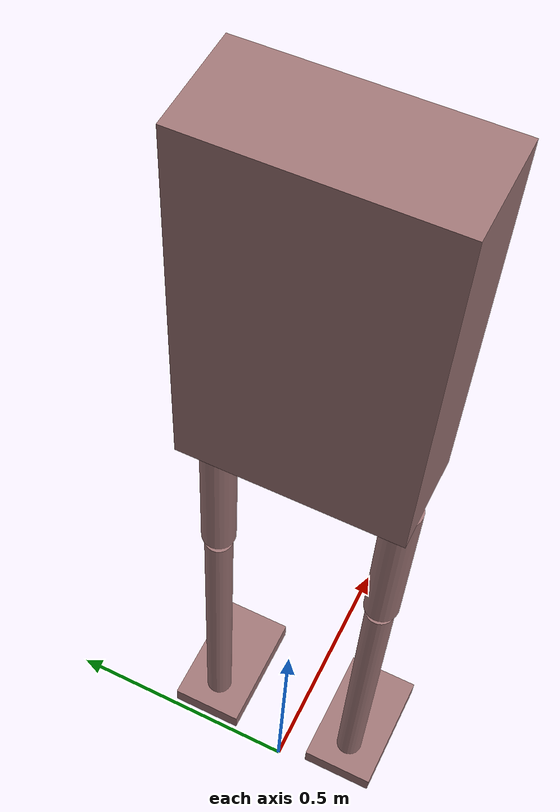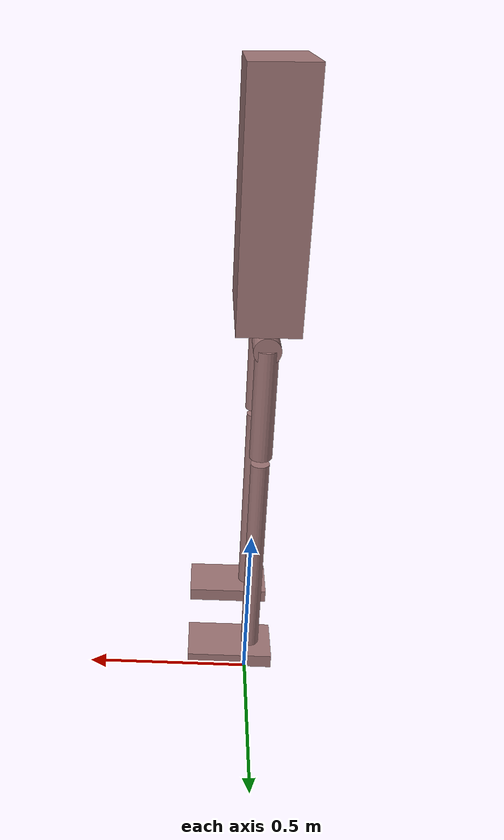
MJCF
<mujoco model="mauve_biped">
    <compiler angle="degree" coordinate="local" inertiafromgeom="true"/>

    <default>
    <geom rgba="0.62 0.46 0.46 1" density="1000" friction="1.0 0.005 0.0001"/>
    <joint damping="1.5" armature="0.01" limited="true"/>
    <motor ctrlrange="-1.0 1.0"/>
    </default>

    <worldbody>
    <body name="torso" pos="0 0 1.5">
        <camera name="tracking_cam" mode="trackcom" pos="-6 -6 6" xyaxes="1 -1 0 0 1 1"/>
        <freejoint name="root"/>

        <geom name="torso_box" type="box" size="0.08 0.18 0.3" density="300"/>
        <geom name="pelvis_sphere" type="sphere" size="0.04" pos="0 0 -0.34" density="300"/>

        <body name="left_leg" pos="0 0.12 -0.34">
        <joint name="left_hip_roll" type="hinge" axis="1 0 0" range="-25 25"/>
        <joint name="left_hip" type="hinge" axis="0 1 0" range="-70 45"/>
        <geom name="left_hip_hinge" type="cylinder" fromto="0 -0.03 0 0 0.05 0" size="0.035"/>
        <geom name="left_thigh" type="cylinder" fromto="0 0.03 0 0 0.03 -0.3" size="0.03"/>
        <body name="left_shin" pos="0 0.03 -0.32">
            <joint name="left_knee" type="hinge" axis="0 1 0" range="0 120"/>
            <geom name="left_shin_geom" type="cylinder" fromto="0 0 0 0 0 -0.6" size="0.025"/>
            <body name="left_foot" pos="0 0 -0.6">
                <geom name="left_foot_box" type="box" size="0.12 0.07 0.02" pos="0.06 0 -0.02"/>
                <site name="left_foot_site" pos="0.06 0 -0.02"/>
            </body>
        </body>
        </body>

        <body name="right_leg" pos="0 -0.12 -0.34">
        <joint name="right_hip_roll" type="hinge" axis="1 0 0" range="-25 25"/>
        <joint name="right_hip" type="hinge" axis="0 1 0" range="-70 45"/>
        <geom name="right_hip_hinge" type="cylinder" fromto="0 0.03 0 0 -0.05 0" size="0.035"/>
        <geom name="right_thigh" type="cylinder" fromto="0 -0.03 0 0 -0.03 -0.3" size="0.03"/>
        <body name="right_shin" pos="0 -0.03 -0.32">
            <joint name="right_knee" type="hinge" axis="0 1 0" range="0 120"/>
            <geom name="right_shin_geom" type="cylinder" fromto="0 0 0 0 0 -0.6" size="0.025"/>
            <body name="right_foot" pos="0 0 -0.6">
                <geom name="right_foot_box" type="box" size="0.12 0.07 0.02" pos="0.06 0 -0.02"/>
                <site name="right_foot_site" pos="0.06 0 -0.02"/>
            </body>
        </body>
        </body>
    </body>
    </worldbody>

    <actuator>
    <motor joint="left_hip_roll" gear="150"/>
    <motor joint="left_hip" gear="200"/>
    <motor joint="left_knee" gear="150"/>
    <motor joint="right_hip_roll" gear="150"/>
    <motor joint="right_hip" gear="200"/>
    <motor joint="right_knee" gear="150"/>
    </actuator>
</mujoco>
